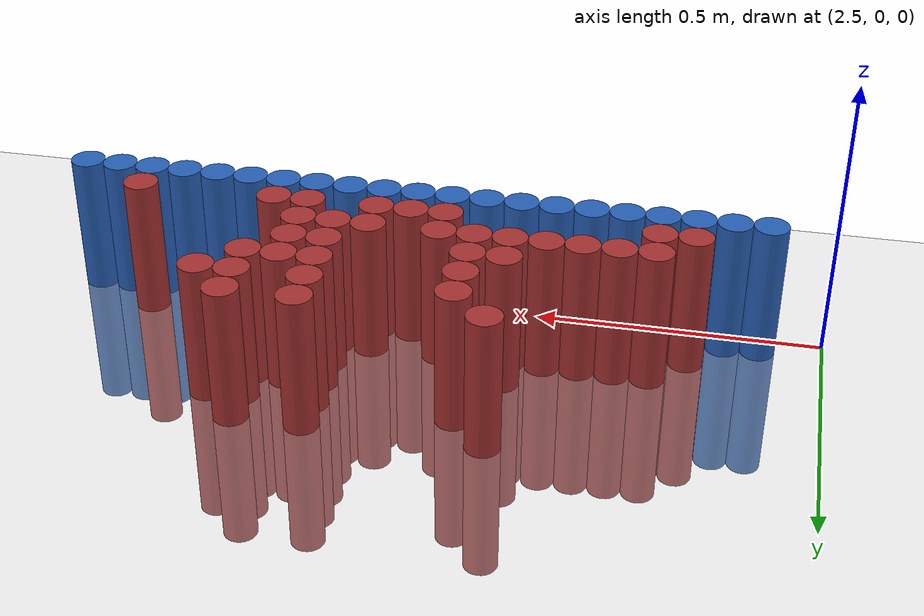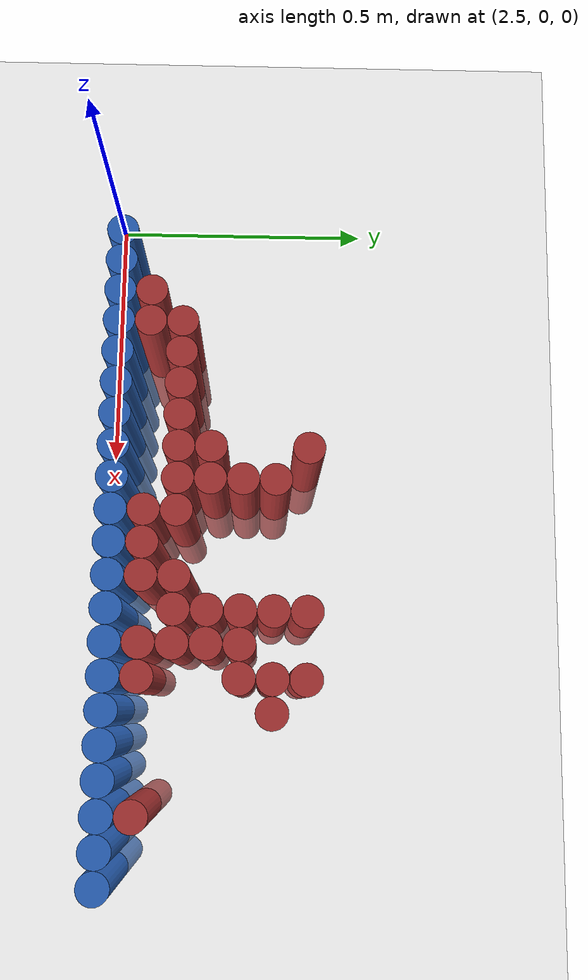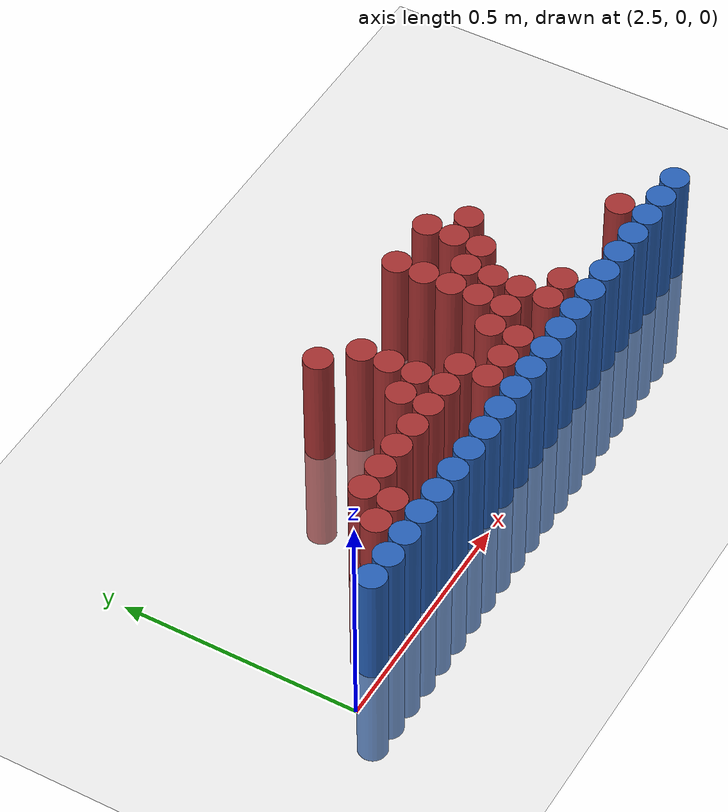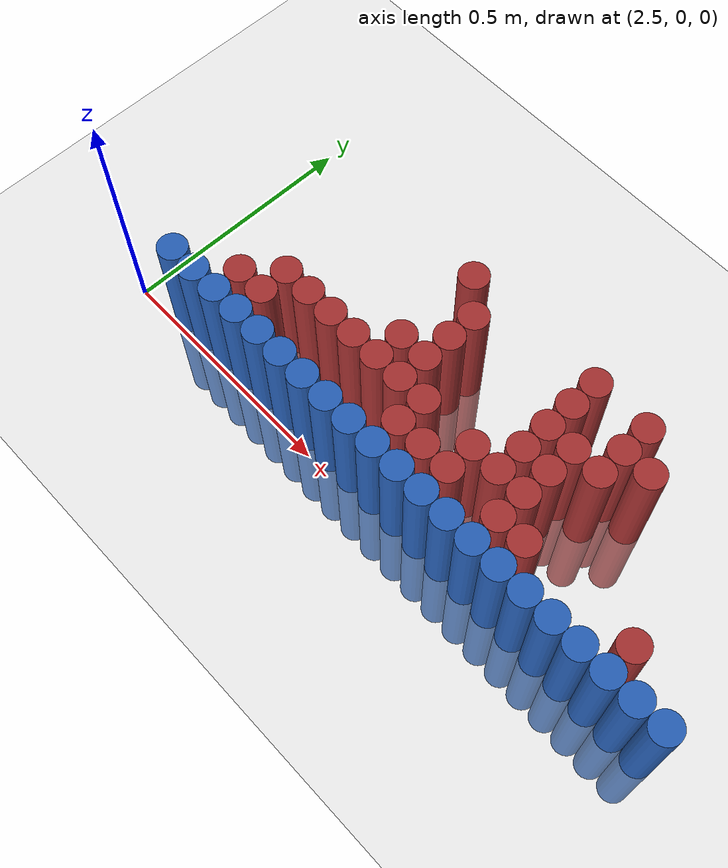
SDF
<sdf version="1.6">
 <world name="default">
  <model name="ground_plane">
   <static>1</static>
   <link name="link">
    <collision name="collision">
     <geometry><plane><normal>0 0 1</normal><size>100 100</size></plane></geometry>
     <surface><friction><ode><mu>100</mu><mu2>50</mu2></ode></friction></surface>
    </collision>
    <visual name="visual">
     <cast_shadows>0</cast_shadows>
     <geometry><plane><normal>0 0 1</normal><size>100 100</size></plane></geometry>
     <material>
      <script><uri>file://media/materials/scripts/gazebo.material</uri><name>Gazebo/Grey</name></script>
     </material>
    </visual>
   </link>
  </model>
  <model name="unit_cylinder_254">
   <static>1</static>
   <pose>3.030000 0.390000 0.000000 0.000000 0.000000 0.000000</pose>
   <link name="link">
    <inertial>
     <mass>1</mass>
     <inertia><ixx>0.145833</ixx><ixy>0</ixy><ixz>0</ixz><iyy>0.145833</iyy><iyz>0</iyz><izz>0.125</izz></inertia>
    </inertial>
    <collision name="collision">
     <geometry><cylinder><radius>0.030000</radius><length>0.5</length></cylinder></geometry>
    </collision>
    <visual name="visual">
     <geometry><cylinder><radius>0.030000</radius><length>0.5</length></cylinder></geometry>
     <material>
      <ambient>0.648000 0.192000 0.192000 1</ambient>
      <diffuse>0.648000 0.192000 0.192000 1</diffuse>
     </material>
     <material>
      <script><name>Gazebo/Grey</name><uri>file://media/materials/scripts/gazebo.material</uri></script>
     </material>
    </visual>
   </link>
  </model>
  <model name="unit_cylinder_255">
   <static>1</static>
   <pose>3.330000 0.390000 0.000000 0.000000 0.000000 0.000000</pose>
   <link name="link">
    <inertial>
     <mass>1</mass>
     <inertia><ixx>0.145833</ixx><ixy>0</ixy><ixz>0</ixz><iyy>0.145833</iyy><iyz>0</iyz><izz>0.125</izz></inertia>
    </inertial>
    <collision name="collision">
     <geometry><cylinder><radius>0.030000</radius><length>0.5</length></cylinder></geometry>
    </collision>
    <visual name="visual">
     <geometry><cylinder><radius>0.030000</radius><length>0.5</length></cylinder></geometry>
     <material>
      <ambient>0.648000 0.192000 0.192000 1</ambient>
      <diffuse>0.648000 0.192000 0.192000 1</diffuse>
     </material>
     <material>
      <script><name>Gazebo/Grey</name><uri>file://media/materials/scripts/gazebo.material</uri></script>
     </material>
    </visual>
   </link>
  </model>
  <model name="unit_cylinder_256">
   <static>1</static>
   <pose>3.450000 0.390000 0.000000 0.000000 0.000000 0.000000</pose>
   <link name="link">
    <inertial>
     <mass>1</mass>
     <inertia><ixx>0.145833</ixx><ixy>0</ixy><ixz>0</ixz><iyy>0.145833</iyy><iyz>0</iyz><izz>0.125</izz></inertia>
    </inertial>
    <collision name="collision">
     <geometry><cylinder><radius>0.030000</radius><length>0.5</length></cylinder></geometry>
    </collision>
    <visual name="visual">
     <geometry><cylinder><radius>0.030000</radius><length>0.5</length></cylinder></geometry>
     <material>
      <ambient>0.648000 0.192000 0.192000 1</ambient>
      <diffuse>0.648000 0.192000 0.192000 1</diffuse>
     </material>
     <material>
      <script><name>Gazebo/Grey</name><uri>file://media/materials/scripts/gazebo.material</uri></script>
     </material>
    </visual>
   </link>
  </model>
  <model name="unit_cylinder_258">
   <static>1</static>
   <pose>3.090000 0.330000 0.000000 0.000000 0.000000 0.000000</pose>
   <link name="link">
    <inertial>
     <mass>1</mass>
     <inertia><ixx>0.145833</ixx><ixy>0</ixy><ixz>0</ixz><iyy>0.145833</iyy><iyz>0</iyz><izz>0.125</izz></inertia>
    </inertial>
    <collision name="collision">
     <geometry><cylinder><radius>0.030000</radius><length>0.5</length></cylinder></geometry>
    </collision>
    <visual name="visual">
     <geometry><cylinder><radius>0.030000</radius><length>0.5</length></cylinder></geometry>
     <material>
      <ambient>0.648000 0.192000 0.192000 1</ambient>
      <diffuse>0.648000 0.192000 0.192000 1</diffuse>
     </material>
     <material>
      <script><name>Gazebo/Grey</name><uri>file://media/materials/scripts/gazebo.material</uri></script>
     </material>
    </visual>
   </link>
  </model>
  <model name="unit_cylinder_259">
   <static>1</static>
   <pose>3.330000 0.330000 0.000000 0.000000 0.000000 0.000000</pose>
   <link name="link">
    <inertial>
     <mass>1</mass>
     <inertia><ixx>0.145833</ixx><ixy>0</ixy><ixz>0</ixz><iyy>0.145833</iyy><iyz>0</iyz><izz>0.125</izz></inertia>
    </inertial>
    <collision name="collision">
     <geometry><cylinder><radius>0.030000</radius><length>0.5</length></cylinder></geometry>
    </collision>
    <visual name="visual">
     <geometry><cylinder><radius>0.030000</radius><length>0.5</length></cylinder></geometry>
     <material>
      <ambient>0.648000 0.192000 0.192000 1</ambient>
      <diffuse>0.648000 0.192000 0.192000 1</diffuse>
     </material>
     <material>
      <script><name>Gazebo/Grey</name><uri>file://media/materials/scripts/gazebo.material</uri></script>
     </material>
    </visual>
   </link>
  </model>
  <model name="unit_cylinder_260">
   <static>1</static>
   <pose>3.450000 0.330000 0.000000 0.000000 0.000000 0.000000</pose>
   <link name="link">
    <inertial>
     <mass>1</mass>
     <inertia><ixx>0.145833</ixx><ixy>0</ixy><ixz>0</ixz><iyy>0.145833</iyy><iyz>0</iyz><izz>0.125</izz></inertia>
    </inertial>
    <collision name="collision">
     <geometry><cylinder><radius>0.030000</radius><length>0.5</length></cylinder></geometry>
    </collision>
    <visual name="visual">
     <geometry><cylinder><radius>0.030000</radius><length>0.5</length></cylinder></geometry>
     <material>
      <ambient>0.648000 0.192000 0.192000 1</ambient>
      <diffuse>0.648000 0.192000 0.192000 1</diffuse>
     </material>
     <material>
      <script><name>Gazebo/Grey</name><uri>file://media/materials/scripts/gazebo.material</uri></script>
     </material>
    </visual>
   </link>
  </model>
  <model name="unit_cylinder_261">
   <static>1</static>
   <pose>3.510000 0.330000 0.000000 0.000000 0.000000 0.000000</pose>
   <link name="link">
    <inertial>
     <mass>1</mass>
     <inertia><ixx>0.145833</ixx><ixy>0</ixy><ixz>0</ixz><iyy>0.145833</iyy><iyz>0</iyz><izz>0.125</izz></inertia>
    </inertial>
    <collision name="collision">
     <geometry><cylinder><radius>0.030000</radius><length>0.5</length></cylinder></geometry>
    </collision>
    <visual name="visual">
     <geometry><cylinder><radius>0.030000</radius><length>0.5</length></cylinder></geometry>
     <material>
      <ambient>0.648000 0.192000 0.192000 1</ambient>
      <diffuse>0.648000 0.192000 0.192000 1</diffuse>
     </material>
     <material>
      <script><name>Gazebo/Grey</name><uri>file://media/materials/scripts/gazebo.material</uri></script>
     </material>
    </visual>
   </link>
  </model>
  <model name="unit_cylinder_262">
   <static>1</static>
   <pose>3.090000 0.270000 0.000000 0.000000 0.000000 0.000000</pose>
   <link name="link">
    <inertial>
     <mass>1</mass>
     <inertia><ixx>0.145833</ixx><ixy>0</ixy><ixz>0</ixz><iyy>0.145833</iyy><iyz>0</iyz><izz>0.125</izz></inertia>
    </inertial>
    <collision name="collision">
     <geometry><cylinder><radius>0.030000</radius><length>0.5</length></cylinder></geometry>
    </collision>
    <visual name="visual">
     <geometry><cylinder><radius>0.030000</radius><length>0.5</length></cylinder></geometry>
     <material>
      <ambient>0.648000 0.192000 0.192000 1</ambient>
      <diffuse>0.648000 0.192000 0.192000 1</diffuse>
     </material>
     <material>
      <script><name>Gazebo/Grey</name><uri>file://media/materials/scripts/gazebo.material</uri></script>
     </material>
    </visual>
   </link>
  </model>
  <model name="unit_cylinder_263">
   <static>1</static>
   <pose>3.330000 0.270000 0.000000 0.000000 0.000000 0.000000</pose>
   <link name="link">
    <inertial>
     <mass>1</mass>
     <inertia><ixx>0.145833</ixx><ixy>0</ixy><ixz>0</ixz><iyy>0.145833</iyy><iyz>0</iyz><izz>0.125</izz></inertia>
    </inertial>
    <collision name="collision">
     <geometry><cylinder><radius>0.030000</radius><length>0.5</length></cylinder></geometry>
    </collision>
    <visual name="visual">
     <geometry><cylinder><radius>0.030000</radius><length>0.5</length></cylinder></geometry>
     <material>
      <ambient>0.648000 0.192000 0.192000 1</ambient>
      <diffuse>0.648000 0.192000 0.192000 1</diffuse>
     </material>
     <material>
      <script><name>Gazebo/Grey</name><uri>file://media/materials/scripts/gazebo.material</uri></script>
     </material>
    </visual>
   </link>
  </model>
  <model name="unit_cylinder_264">
   <static>1</static>
   <pose>3.390000 0.270000 0.000000 0.000000 0.000000 0.000000</pose>
   <link name="link">
    <inertial>
     <mass>1</mass>
     <inertia><ixx>0.145833</ixx><ixy>0</ixy><ixz>0</ixz><iyy>0.145833</iyy><iyz>0</iyz><izz>0.125</izz></inertia>
    </inertial>
    <collision name="collision">
     <geometry><cylinder><radius>0.030000</radius><length>0.5</length></cylinder></geometry>
    </collision>
    <visual name="visual">
     <geometry><cylinder><radius>0.030000</radius><length>0.5</length></cylinder></geometry>
     <material>
      <ambient>0.648000 0.192000 0.192000 1</ambient>
      <diffuse>0.648000 0.192000 0.192000 1</diffuse>
     </material>
     <material>
      <script><name>Gazebo/Grey</name><uri>file://media/materials/scripts/gazebo.material</uri></script>
     </material>
    </visual>
   </link>
  </model>
  <model name="unit_cylinder_265">
   <static>1</static>
   <pose>3.450000 0.270000 0.000000 0.000000 0.000000 0.000000</pose>
   <link name="link">
    <inertial>
     <mass>1</mass>
     <inertia><ixx>0.145833</ixx><ixy>0</ixy><ixz>0</ixz><iyy>0.145833</iyy><iyz>0</iyz><izz>0.125</izz></inertia>
    </inertial>
    <collision name="collision">
     <geometry><cylinder><radius>0.030000</radius><length>0.5</length></cylinder></geometry>
    </collision>
    <visual name="visual">
     <geometry><cylinder><radius>0.030000</radius><length>0.5</length></cylinder></geometry>
     <material>
      <ambient>0.648000 0.192000 0.192000 1</ambient>
      <diffuse>0.648000 0.192000 0.192000 1</diffuse>
     </material>
     <material>
      <script><name>Gazebo/Grey</name><uri>file://media/materials/scripts/gazebo.material</uri></script>
     </material>
    </visual>
   </link>
  </model>
  <model name="unit_cylinder_266">
   <static>1</static>
   <pose>3.030000 0.210000 0.000000 0.000000 0.000000 0.000000</pose>
   <link name="link">
    <inertial>
     <mass>1</mass>
     <inertia><ixx>0.145833</ixx><ixy>0</ixy><ixz>0</ixz><iyy>0.145833</iyy><iyz>0</iyz><izz>0.125</izz></inertia>
    </inertial>
    <collision name="collision">
     <geometry><cylinder><radius>0.030000</radius><length>0.5</length></cylinder></geometry>
    </collision>
    <visual name="visual">
     <geometry><cylinder><radius>0.030000</radius><length>0.5</length></cylinder></geometry>
     <material>
      <ambient>0.648000 0.192000 0.192000 1</ambient>
      <diffuse>0.648000 0.192000 0.192000 1</diffuse>
     </material>
     <material>
      <script><name>Gazebo/Grey</name><uri>file://media/materials/scripts/gazebo.material</uri></script>
     </material>
    </visual>
   </link>
  </model>
  <model name="unit_cylinder_267">
   <static>1</static>
   <pose>3.090000 0.210000 0.000000 0.000000 0.000000 0.000000</pose>
   <link name="link">
    <inertial>
     <mass>1</mass>
     <inertia><ixx>0.145833</ixx><ixy>0</ixy><ixz>0</ixz><iyy>0.145833</iyy><iyz>0</iyz><izz>0.125</izz></inertia>
    </inertial>
    <collision name="collision">
     <geometry><cylinder><radius>0.030000</radius><length>0.5</length></cylinder></geometry>
    </collision>
    <visual name="visual">
     <geometry><cylinder><radius>0.030000</radius><length>0.5</length></cylinder></geometry>
     <material>
      <ambient>0.648000 0.192000 0.192000 1</ambient>
      <diffuse>0.648000 0.192000 0.192000 1</diffuse>
     </material>
     <material>
      <script><name>Gazebo/Grey</name><uri>file://media/materials/scripts/gazebo.material</uri></script>
     </material>
    </visual>
   </link>
  </model>
  <model name="unit_cylinder_268">
   <static>1</static>
   <pose>3.330000 0.210000 0.000000 0.000000 0.000000 0.000000</pose>
   <link name="link">
    <inertial>
     <mass>1</mass>
     <inertia><ixx>0.145833</ixx><ixy>0</ixy><ixz>0</ixz><iyy>0.145833</iyy><iyz>0</iyz><izz>0.125</izz></inertia>
    </inertial>
    <collision name="collision">
     <geometry><cylinder><radius>0.030000</radius><length>0.5</length></cylinder></geometry>
    </collision>
    <visual name="visual">
     <geometry><cylinder><radius>0.030000</radius><length>0.5</length></cylinder></geometry>
     <material>
      <ambient>0.648000 0.192000 0.192000 1</ambient>
      <diffuse>0.648000 0.192000 0.192000 1</diffuse>
     </material>
     <material>
      <script><name>Gazebo/Grey</name><uri>file://media/materials/scripts/gazebo.material</uri></script>
     </material>
    </visual>
   </link>
  </model>
  <model name="unit_cylinder_269">
   <static>1</static>
   <pose>3.390000 0.210000 0.000000 0.000000 0.000000 0.000000</pose>
   <link name="link">
    <inertial>
     <mass>1</mass>
     <inertia><ixx>0.145833</ixx><ixy>0</ixy><ixz>0</ixz><iyy>0.145833</iyy><iyz>0</iyz><izz>0.125</izz></inertia>
    </inertial>
    <collision name="collision">
     <geometry><cylinder><radius>0.030000</radius><length>0.5</length></cylinder></geometry>
    </collision>
    <visual name="visual">
     <geometry><cylinder><radius>0.030000</radius><length>0.5</length></cylinder></geometry>
     <material>
      <ambient>0.648000 0.192000 0.192000 1</ambient>
      <diffuse>0.648000 0.192000 0.192000 1</diffuse>
     </material>
     <material>
      <script><name>Gazebo/Grey</name><uri>file://media/materials/scripts/gazebo.material</uri></script>
     </material>
    </visual>
   </link>
  </model>
  <model name="unit_cylinder_272">
   <static>1</static>
   <pose>2.790000 0.150000 0.000000 0.000000 0.000000 0.000000</pose>
   <link name="link">
    <inertial>
     <mass>1</mass>
     <inertia><ixx>0.145833</ixx><ixy>0</ixy><ixz>0</ixz><iyy>0.145833</iyy><iyz>0</iyz><izz>0.125</izz></inertia>
    </inertial>
    <collision name="collision">
     <geometry><cylinder><radius>0.030000</radius><length>0.5</length></cylinder></geometry>
    </collision>
    <visual name="visual">
     <geometry><cylinder><radius>0.030000</radius><length>0.5</length></cylinder></geometry>
     <material>
      <ambient>0.648000 0.192000 0.192000 1</ambient>
      <diffuse>0.648000 0.192000 0.192000 1</diffuse>
     </material>
     <material>
      <script><name>Gazebo/Grey</name><uri>file://media/materials/scripts/gazebo.material</uri></script>
     </material>
    </visual>
   </link>
  </model>
  <model name="unit_cylinder_273">
   <static>1</static>
   <pose>2.850000 0.150000 0.000000 0.000000 0.000000 0.000000</pose>
   <link name="link">
    <inertial>
     <mass>1</mass>
     <inertia><ixx>0.145833</ixx><ixy>0</ixy><ixz>0</ixz><iyy>0.145833</iyy><iyz>0</iyz><izz>0.125</izz></inertia>
    </inertial>
    <collision name="collision">
     <geometry><cylinder><radius>0.030000</radius><length>0.5</length></cylinder></geometry>
    </collision>
    <visual name="visual">
     <geometry><cylinder><radius>0.030000</radius><length>0.5</length></cylinder></geometry>
     <material>
      <ambient>0.648000 0.192000 0.192000 1</ambient>
      <diffuse>0.648000 0.192000 0.192000 1</diffuse>
     </material>
     <material>
      <script><name>Gazebo/Grey</name><uri>file://media/materials/scripts/gazebo.material</uri></script>
     </material>
    </visual>
   </link>
  </model>
  <model name="unit_cylinder_274">
   <static>1</static>
   <pose>2.910000 0.150000 0.000000 0.000000 0.000000 0.000000</pose>
   <link name="link">
    <inertial>
     <mass>1</mass>
     <inertia><ixx>0.145833</ixx><ixy>0</ixy><ixz>0</ixz><iyy>0.145833</iyy><iyz>0</iyz><izz>0.125</izz></inertia>
    </inertial>
    <collision name="collision">
     <geometry><cylinder><radius>0.030000</radius><length>0.5</length></cylinder></geometry>
    </collision>
    <visual name="visual">
     <geometry><cylinder><radius>0.030000</radius><length>0.5</length></cylinder></geometry>
     <material>
      <ambient>0.648000 0.192000 0.192000 1</ambient>
      <diffuse>0.648000 0.192000 0.192000 1</diffuse>
     </material>
     <material>
      <script><name>Gazebo/Grey</name><uri>file://media/materials/scripts/gazebo.material</uri></script>
     </material>
    </visual>
   </link>
  </model>
  <model name="unit_cylinder_275">
   <static>1</static>
   <pose>2.970000 0.150000 0.000000 0.000000 0.000000 0.000000</pose>
   <link name="link">
    <inertial>
     <mass>1</mass>
     <inertia><ixx>0.145833</ixx><ixy>0</ixy><ixz>0</ixz><iyy>0.145833</iyy><iyz>0</iyz><izz>0.125</izz></inertia>
    </inertial>
    <collision name="collision">
     <geometry><cylinder><radius>0.030000</radius><length>0.5</length></cylinder></geometry>
    </collision>
    <visual name="visual">
     <geometry><cylinder><radius>0.030000</radius><length>0.5</length></cylinder></geometry>
     <material>
      <ambient>0.648000 0.192000 0.192000 1</ambient>
      <diffuse>0.648000 0.192000 0.192000 1</diffuse>
     </material>
     <material>
      <script><name>Gazebo/Grey</name><uri>file://media/materials/scripts/gazebo.material</uri></script>
     </material>
    </visual>
   </link>
  </model>
  <model name="unit_cylinder_276">
   <static>1</static>
   <pose>3.030000 0.150000 0.000000 0.000000 0.000000 0.000000</pose>
   <link name="link">
    <inertial>
     <mass>1</mass>
     <inertia><ixx>0.145833</ixx><ixy>0</ixy><ixz>0</ixz><iyy>0.145833</iyy><iyz>0</iyz><izz>0.125</izz></inertia>
    </inertial>
    <collision name="collision">
     <geometry><cylinder><radius>0.030000</radius><length>0.5</length></cylinder></geometry>
    </collision>
    <visual name="visual">
     <geometry><cylinder><radius>0.030000</radius><length>0.5</length></cylinder></geometry>
     <material>
      <ambient>0.648000 0.192000 0.192000 1</ambient>
      <diffuse>0.648000 0.192000 0.192000 1</diffuse>
     </material>
     <material>
      <script><name>Gazebo/Grey</name><uri>file://media/materials/scripts/gazebo.material</uri></script>
     </material>
    </visual>
   </link>
  </model>
  <model name="unit_cylinder_277">
   <static>1</static>
   <pose>3.090000 0.150000 0.000000 0.000000 0.000000 0.000000</pose>
   <link name="link">
    <inertial>
     <mass>1</mass>
     <inertia><ixx>0.145833</ixx><ixy>0</ixy><ixz>0</ixz><iyy>0.145833</iyy><iyz>0</iyz><izz>0.125</izz></inertia>
    </inertial>
    <collision name="collision">
     <geometry><cylinder><radius>0.030000</radius><length>0.5</length></cylinder></geometry>
    </collision>
    <visual name="visual">
     <geometry><cylinder><radius>0.030000</radius><length>0.5</length></cylinder></geometry>
     <material>
      <ambient>0.648000 0.192000 0.192000 1</ambient>
      <diffuse>0.648000 0.192000 0.192000 1</diffuse>
     </material>
     <material>
      <script><name>Gazebo/Grey</name><uri>file://media/materials/scripts/gazebo.material</uri></script>
     </material>
    </visual>
   </link>
  </model>
  <model name="unit_cylinder_278">
   <static>1</static>
   <pose>3.150000 0.150000 0.000000 0.000000 0.000000 0.000000</pose>
   <link name="link">
    <inertial>
     <mass>1</mass>
     <inertia><ixx>0.145833</ixx><ixy>0</ixy><ixz>0</ixz><iyy>0.145833</iyy><iyz>0</iyz><izz>0.125</izz></inertia>
    </inertial>
    <collision name="collision">
     <geometry><cylinder><radius>0.030000</radius><length>0.5</length></cylinder></geometry>
    </collision>
    <visual name="visual">
     <geometry><cylinder><radius>0.030000</radius><length>0.5</length></cylinder></geometry>
     <material>
      <ambient>0.648000 0.192000 0.192000 1</ambient>
      <diffuse>0.648000 0.192000 0.192000 1</diffuse>
     </material>
     <material>
      <script><name>Gazebo/Grey</name><uri>file://media/materials/scripts/gazebo.material</uri></script>
     </material>
    </visual>
   </link>
  </model>
  <model name="unit_cylinder_279">
   <static>1</static>
   <pose>3.270000 0.150000 0.000000 0.000000 0.000000 0.000000</pose>
   <link name="link">
    <inertial>
     <mass>1</mass>
     <inertia><ixx>0.145833</ixx><ixy>0</ixy><ixz>0</ixz><iyy>0.145833</iyy><iyz>0</iyz><izz>0.125</izz></inertia>
    </inertial>
    <collision name="collision">
     <geometry><cylinder><radius>0.030000</radius><length>0.5</length></cylinder></geometry>
    </collision>
    <visual name="visual">
     <geometry><cylinder><radius>0.030000</radius><length>0.5</length></cylinder></geometry>
     <material>
      <ambient>0.648000 0.192000 0.192000 1</ambient>
      <diffuse>0.648000 0.192000 0.192000 1</diffuse>
     </material>
     <material>
      <script><name>Gazebo/Grey</name><uri>file://media/materials/scripts/gazebo.material</uri></script>
     </material>
    </visual>
   </link>
  </model>
  <model name="unit_cylinder_280">
   <static>1</static>
   <pose>3.330000 0.150000 0.000000 0.000000 0.000000 0.000000</pose>
   <link name="link">
    <inertial>
     <mass>1</mass>
     <inertia><ixx>0.145833</ixx><ixy>0</ixy><ixz>0</ixz><iyy>0.145833</iyy><iyz>0</iyz><izz>0.125</izz></inertia>
    </inertial>
    <collision name="collision">
     <geometry><cylinder><radius>0.030000</radius><length>0.5</length></cylinder></geometry>
    </collision>
    <visual name="visual">
     <geometry><cylinder><radius>0.030000</radius><length>0.5</length></cylinder></geometry>
     <material>
      <ambient>0.648000 0.192000 0.192000 1</ambient>
      <diffuse>0.648000 0.192000 0.192000 1</diffuse>
     </material>
     <material>
      <script><name>Gazebo/Grey</name><uri>file://media/materials/scripts/gazebo.material</uri></script>
     </material>
    </visual>
   </link>
  </model>
  <model name="unit_cylinder_281">
   <static>1</static>
   <pose>3.390000 0.150000 0.000000 0.000000 0.000000 0.000000</pose>
   <link name="link">
    <inertial>
     <mass>1</mass>
     <inertia><ixx>0.145833</ixx><ixy>0</ixy><ixz>0</ixz><iyy>0.145833</iyy><iyz>0</iyz><izz>0.125</izz></inertia>
    </inertial>
    <collision name="collision">
     <geometry><cylinder><radius>0.030000</radius><length>0.5</length></cylinder></geometry>
    </collision>
    <visual name="visual">
     <geometry><cylinder><radius>0.030000</radius><length>0.5</length></cylinder></geometry>
     <material>
      <ambient>0.648000 0.192000 0.192000 1</ambient>
      <diffuse>0.648000 0.192000 0.192000 1</diffuse>
     </material>
     <material>
      <script><name>Gazebo/Grey</name><uri>file://media/materials/scripts/gazebo.material</uri></script>
     </material>
    </visual>
   </link>
  </model>
  <model name="unit_cylinder_289">
   <static>1</static>
   <pose>2.730000 0.090000 0.000000 0.000000 0.000000 0.000000</pose>
   <link name="link">
    <inertial>
     <mass>1</mass>
     <inertia><ixx>0.145833</ixx><ixy>0</ixy><ixz>0</ixz><iyy>0.145833</iyy><iyz>0</iyz><izz>0.125</izz></inertia>
    </inertial>
    <collision name="collision">
     <geometry><cylinder><radius>0.030000</radius><length>0.5</length></cylinder></geometry>
    </collision>
    <visual name="visual">
     <geometry><cylinder><radius>0.030000</radius><length>0.5</length></cylinder></geometry>
     <material>
      <ambient>0.648000 0.192000 0.192000 1</ambient>
      <diffuse>0.648000 0.192000 0.192000 1</diffuse>
     </material>
     <material>
      <script><name>Gazebo/Grey</name><uri>file://media/materials/scripts/gazebo.material</uri></script>
     </material>
    </visual>
   </link>
  </model>
  <model name="unit_cylinder_290">
   <static>1</static>
   <pose>2.790000 0.090000 0.000000 0.000000 0.000000 0.000000</pose>
   <link name="link">
    <inertial>
     <mass>1</mass>
     <inertia><ixx>0.145833</ixx><ixy>0</ixy><ixz>0</ixz><iyy>0.145833</iyy><iyz>0</iyz><izz>0.125</izz></inertia>
    </inertial>
    <collision name="collision">
     <geometry><cylinder><radius>0.030000</radius><length>0.5</length></cylinder></geometry>
    </collision>
    <visual name="visual">
     <geometry><cylinder><radius>0.030000</radius><length>0.5</length></cylinder></geometry>
     <material>
      <ambient>0.648000 0.192000 0.192000 1</ambient>
      <diffuse>0.648000 0.192000 0.192000 1</diffuse>
     </material>
     <material>
      <script><name>Gazebo/Grey</name><uri>file://media/materials/scripts/gazebo.material</uri></script>
     </material>
    </visual>
   </link>
  </model>
  <model name="unit_cylinder_291">
   <static>1</static>
   <pose>3.150000 0.090000 0.000000 0.000000 0.000000 0.000000</pose>
   <link name="link">
    <inertial>
     <mass>1</mass>
     <inertia><ixx>0.145833</ixx><ixy>0</ixy><ixz>0</ixz><iyy>0.145833</iyy><iyz>0</iyz><izz>0.125</izz></inertia>
    </inertial>
    <collision name="collision">
     <geometry><cylinder><radius>0.030000</radius><length>0.5</length></cylinder></geometry>
    </collision>
    <visual name="visual">
     <geometry><cylinder><radius>0.030000</radius><length>0.5</length></cylinder></geometry>
     <material>
      <ambient>0.648000 0.192000 0.192000 1</ambient>
      <diffuse>0.648000 0.192000 0.192000 1</diffuse>
     </material>
     <material>
      <script><name>Gazebo/Grey</name><uri>file://media/materials/scripts/gazebo.material</uri></script>
     </material>
    </visual>
   </link>
  </model>
  <model name="unit_cylinder_292">
   <static>1</static>
   <pose>3.210000 0.090000 0.000000 0.000000 0.000000 0.000000</pose>
   <link name="link">
    <inertial>
     <mass>1</mass>
     <inertia><ixx>0.145833</ixx><ixy>0</ixy><ixz>0</ixz><iyy>0.145833</iyy><iyz>0</iyz><izz>0.125</izz></inertia>
    </inertial>
    <collision name="collision">
     <geometry><cylinder><radius>0.030000</radius><length>0.5</length></cylinder></geometry>
    </collision>
    <visual name="visual">
     <geometry><cylinder><radius>0.030000</radius><length>0.5</length></cylinder></geometry>
     <material>
      <ambient>0.648000 0.192000 0.192000 1</ambient>
      <diffuse>0.648000 0.192000 0.192000 1</diffuse>
     </material>
     <material>
      <script><name>Gazebo/Grey</name><uri>file://media/materials/scripts/gazebo.material</uri></script>
     </material>
    </visual>
   </link>
  </model>
  <model name="unit_cylinder_293">
   <static>1</static>
   <pose>3.270000 0.090000 0.000000 0.000000 0.000000 0.000000</pose>
   <link name="link">
    <inertial>
     <mass>1</mass>
     <inertia><ixx>0.145833</ixx><ixy>0</ixy><ixz>0</ixz><iyy>0.145833</iyy><iyz>0</iyz><izz>0.125</izz></inertia>
    </inertial>
    <collision name="collision">
     <geometry><cylinder><radius>0.030000</radius><length>0.5</length></cylinder></geometry>
    </collision>
    <visual name="visual">
     <geometry><cylinder><radius>0.030000</radius><length>0.5</length></cylinder></geometry>
     <material>
      <ambient>0.648000 0.192000 0.192000 1</ambient>
      <diffuse>0.648000 0.192000 0.192000 1</diffuse>
     </material>
     <material>
      <script><name>Gazebo/Grey</name><uri>file://media/materials/scripts/gazebo.material</uri></script>
     </material>
    </visual>
   </link>
  </model>
  <model name="unit_cylinder_294">
   <static>1</static>
   <pose>3.390000 0.090000 0.000000 0.000000 0.000000 0.000000</pose>
   <link name="link">
    <inertial>
     <mass>1</mass>
     <inertia><ixx>0.145833</ixx><ixy>0</ixy><ixz>0</ixz><iyy>0.145833</iyy><iyz>0</iyz><izz>0.125</izz></inertia>
    </inertial>
    <collision name="collision">
     <geometry><cylinder><radius>0.030000</radius><length>0.5</length></cylinder></geometry>
    </collision>
    <visual name="visual">
     <geometry><cylinder><radius>0.030000</radius><length>0.5</length></cylinder></geometry>
     <material>
      <ambient>0.648000 0.192000 0.192000 1</ambient>
      <diffuse>0.648000 0.192000 0.192000 1</diffuse>
     </material>
     <material>
      <script><name>Gazebo/Grey</name><uri>file://media/materials/scripts/gazebo.material</uri></script>
     </material>
    </visual>
   </link>
  </model>
  <model name="unit_cylinder_295">
   <static>1</static>
   <pose>3.450000 0.090000 0.000000 0.000000 0.000000 0.000000</pose>
   <link name="link">
    <inertial>
     <mass>1</mass>
     <inertia><ixx>0.145833</ixx><ixy>0</ixy><ixz>0</ixz><iyy>0.145833</iyy><iyz>0</iyz><izz>0.125</izz></inertia>
    </inertial>
    <collision name="collision">
     <geometry><cylinder><radius>0.030000</radius><length>0.5</length></cylinder></geometry>
    </collision>
    <visual name="visual">
     <geometry><cylinder><radius>0.030000</radius><length>0.5</length></cylinder></geometry>
     <material>
      <ambient>0.648000 0.192000 0.192000 1</ambient>
      <diffuse>0.648000 0.192000 0.192000 1</diffuse>
     </material>
     <material>
      <script><name>Gazebo/Grey</name><uri>file://media/materials/scripts/gazebo.material</uri></script>
     </material>
    </visual>
   </link>
  </model>
  <model name="unit_cylinder_296">
   <static>1</static>
   <pose>3.690000 0.090000 0.000000 0.000000 0.000000 0.000000</pose>
   <link name="link">
    <inertial>
     <mass>1</mass>
     <inertia><ixx>0.145833</ixx><ixy>0</ixy><ixz>0</ixz><iyy>0.145833</iyy><iyz>0</iyz><izz>0.125</izz></inertia>
    </inertial>
    <collision name="collision">
     <geometry><cylinder><radius>0.030000</radius><length>0.5</length></cylinder></geometry>
    </collision>
    <visual name="visual">
     <geometry><cylinder><radius>0.030000</radius><length>0.5</length></cylinder></geometry>
     <material>
      <ambient>0.648000 0.192000 0.192000 1</ambient>
      <diffuse>0.648000 0.192000 0.192000 1</diffuse>
     </material>
     <material>
      <script><name>Gazebo/Grey</name><uri>file://media/materials/scripts/gazebo.material</uri></script>
     </material>
    </visual>
   </link>
  </model>
  <model name="unit_cylinder_306">
   <static>1</static>
   <pose>2.610000 0.030000 0.000000 0.000000 0.000000 0.000000</pose>
   <link name="link">
    <inertial>
     <mass>1</mass>
     <inertia><ixx>0.145833</ixx><ixy>0</ixy><ixz>0</ixz><iyy>0.145833</iyy><iyz>0</iyz><izz>0.125</izz></inertia>
    </inertial>
    <collision name="collision">
     <geometry><cylinder><radius>0.030000</radius><length>0.5</length></cylinder></geometry>
    </collision>
    <visual name="visual">
     <geometry><cylinder><radius>0.030000</radius><length>0.5</length></cylinder></geometry>
     <material>
      <ambient>0.152000 0.379000 0.720000 1</ambient>
      <diffuse>0.152000 0.379000 0.720000 1</diffuse>
     </material>
     <material>
      <script><name>Gazebo/Grey</name><uri>file://media/materials/scripts/gazebo.material</uri></script>
     </material>
    </visual>
   </link>
  </model>
  <model name="unit_cylinder_307">
   <static>1</static>
   <pose>2.670000 0.030000 0.000000 0.000000 0.000000 0.000000</pose>
   <link name="link">
    <inertial>
     <mass>1</mass>
     <inertia><ixx>0.145833</ixx><ixy>0</ixy><ixz>0</ixz><iyy>0.145833</iyy><iyz>0</iyz><izz>0.125</izz></inertia>
    </inertial>
    <collision name="collision">
     <geometry><cylinder><radius>0.030000</radius><length>0.5</length></cylinder></geometry>
    </collision>
    <visual name="visual">
     <geometry><cylinder><radius>0.030000</radius><length>0.5</length></cylinder></geometry>
     <material>
      <ambient>0.152000 0.379000 0.720000 1</ambient>
      <diffuse>0.152000 0.379000 0.720000 1</diffuse>
     </material>
     <material>
      <script><name>Gazebo/Grey</name><uri>file://media/materials/scripts/gazebo.material</uri></script>
     </material>
    </visual>
   </link>
  </model>
  <model name="unit_cylinder_308">
   <static>1</static>
   <pose>2.730000 0.030000 0.000000 0.000000 0.000000 0.000000</pose>
   <link name="link">
    <inertial>
     <mass>1</mass>
     <inertia><ixx>0.145833</ixx><ixy>0</ixy><ixz>0</ixz><iyy>0.145833</iyy><iyz>0</iyz><izz>0.125</izz></inertia>
    </inertial>
    <collision name="collision">
     <geometry><cylinder><radius>0.030000</radius><length>0.5</length></cylinder></geometry>
    </collision>
    <visual name="visual">
     <geometry><cylinder><radius>0.030000</radius><length>0.5</length></cylinder></geometry>
     <material>
      <ambient>0.152000 0.379000 0.720000 1</ambient>
      <diffuse>0.152000 0.379000 0.720000 1</diffuse>
     </material>
     <material>
      <script><name>Gazebo/Grey</name><uri>file://media/materials/scripts/gazebo.material</uri></script>
     </material>
    </visual>
   </link>
  </model>
  <model name="unit_cylinder_309">
   <static>1</static>
   <pose>2.790000 0.030000 0.000000 0.000000 0.000000 0.000000</pose>
   <link name="link">
    <inertial>
     <mass>1</mass>
     <inertia><ixx>0.145833</ixx><ixy>0</ixy><ixz>0</ixz><iyy>0.145833</iyy><iyz>0</iyz><izz>0.125</izz></inertia>
    </inertial>
    <collision name="collision">
     <geometry><cylinder><radius>0.030000</radius><length>0.5</length></cylinder></geometry>
    </collision>
    <visual name="visual">
     <geometry><cylinder><radius>0.030000</radius><length>0.5</length></cylinder></geometry>
     <material>
      <ambient>0.152000 0.379000 0.720000 1</ambient>
      <diffuse>0.152000 0.379000 0.720000 1</diffuse>
     </material>
     <material>
      <script><name>Gazebo/Grey</name><uri>file://media/materials/scripts/gazebo.material</uri></script>
     </material>
    </visual>
   </link>
  </model>
  <model name="unit_cylinder_310">
   <static>1</static>
   <pose>2.850000 0.030000 0.000000 0.000000 0.000000 0.000000</pose>
   <link name="link">
    <inertial>
     <mass>1</mass>
     <inertia><ixx>0.145833</ixx><ixy>0</ixy><ixz>0</ixz><iyy>0.145833</iyy><iyz>0</iyz><izz>0.125</izz></inertia>
    </inertial>
    <collision name="collision">
     <geometry><cylinder><radius>0.030000</radius><length>0.5</length></cylinder></geometry>
    </collision>
    <visual name="visual">
     <geometry><cylinder><radius>0.030000</radius><length>0.5</length></cylinder></geometry>
     <material>
      <ambient>0.152000 0.379000 0.720000 1</ambient>
      <diffuse>0.152000 0.379000 0.720000 1</diffuse>
     </material>
     <material>
      <script><name>Gazebo/Grey</name><uri>file://media/materials/scripts/gazebo.material</uri></script>
     </material>
    </visual>
   </link>
  </model>
  <model name="unit_cylinder_311">
   <static>1</static>
   <pose>2.910000 0.030000 0.000000 0.000000 0.000000 0.000000</pose>
   <link name="link">
    <inertial>
     <mass>1</mass>
     <inertia><ixx>0.145833</ixx><ixy>0</ixy><ixz>0</ixz><iyy>0.145833</iyy><iyz>0</iyz><izz>0.125</izz></inertia>
    </inertial>
    <collision name="collision">
     <geometry><cylinder><radius>0.030000</radius><length>0.5</length></cylinder></geometry>
    </collision>
    <visual name="visual">
     <geometry><cylinder><radius>0.030000</radius><length>0.5</length></cylinder></geometry>
     <material>
      <ambient>0.152000 0.379000 0.720000 1</ambient>
      <diffuse>0.152000 0.379000 0.720000 1</diffuse>
     </material>
     <material>
      <script><name>Gazebo/Grey</name><uri>file://media/materials/scripts/gazebo.material</uri></script>
     </material>
    </visual>
   </link>
  </model>
  <model name="unit_cylinder_312">
   <static>1</static>
   <pose>2.970000 0.030000 0.000000 0.000000 0.000000 0.000000</pose>
   <link name="link">
    <inertial>
     <mass>1</mass>
     <inertia><ixx>0.145833</ixx><ixy>0</ixy><ixz>0</ixz><iyy>0.145833</iyy><iyz>0</iyz><izz>0.125</izz></inertia>
    </inertial>
    <collision name="collision">
     <geometry><cylinder><radius>0.030000</radius><length>0.5</length></cylinder></geometry>
    </collision>
    <visual name="visual">
     <geometry><cylinder><radius>0.030000</radius><length>0.5</length></cylinder></geometry>
     <material>
      <ambient>0.152000 0.379000 0.720000 1</ambient>
      <diffuse>0.152000 0.379000 0.720000 1</diffuse>
     </material>
     <material>
      <script><name>Gazebo/Grey</name><uri>file://media/materials/scripts/gazebo.material</uri></script>
     </material>
    </visual>
   </link>
  </model>
  <model name="unit_cylinder_313">
   <static>1</static>
   <pose>3.030000 0.030000 0.000000 0.000000 0.000000 0.000000</pose>
   <link name="link">
    <inertial>
     <mass>1</mass>
     <inertia><ixx>0.145833</ixx><ixy>0</ixy><ixz>0</ixz><iyy>0.145833</iyy><iyz>0</iyz><izz>0.125</izz></inertia>
    </inertial>
    <collision name="collision">
     <geometry><cylinder><radius>0.030000</radius><length>0.5</length></cylinder></geometry>
    </collision>
    <visual name="visual">
     <geometry><cylinder><radius>0.030000</radius><length>0.5</length></cylinder></geometry>
     <material>
      <ambient>0.152000 0.379000 0.720000 1</ambient>
      <diffuse>0.152000 0.379000 0.720000 1</diffuse>
     </material>
     <material>
      <script><name>Gazebo/Grey</name><uri>file://media/materials/scripts/gazebo.material</uri></script>
     </material>
    </visual>
   </link>
  </model>
  <model name="unit_cylinder_314">
   <static>1</static>
   <pose>3.090000 0.030000 0.000000 0.000000 0.000000 0.000000</pose>
   <link name="link">
    <inertial>
     <mass>1</mass>
     <inertia><ixx>0.145833</ixx><ixy>0</ixy><ixz>0</ixz><iyy>0.145833</iyy><iyz>0</iyz><izz>0.125</izz></inertia>
    </inertial>
    <collision name="collision">
     <geometry><cylinder><radius>0.030000</radius><length>0.5</length></cylinder></geometry>
    </collision>
    <visual name="visual">
     <geometry><cylinder><radius>0.030000</radius><length>0.5</length></cylinder></geometry>
     <material>
      <ambient>0.152000 0.379000 0.720000 1</ambient>
      <diffuse>0.152000 0.379000 0.720000 1</diffuse>
     </material>
     <material>
      <script><name>Gazebo/Grey</name><uri>file://media/materials/scripts/gazebo.material</uri></script>
     </material>
    </visual>
   </link>
  </model>
  <model name="unit_cylinder_315">
   <static>1</static>
   <pose>3.150000 0.030000 0.000000 0.000000 0.000000 0.000000</pose>
   <link name="link">
    <inertial>
     <mass>1</mass>
     <inertia><ixx>0.145833</ixx><ixy>0</ixy><ixz>0</ixz><iyy>0.145833</iyy><iyz>0</iyz><izz>0.125</izz></inertia>
    </inertial>
    <collision name="collision">
     <geometry><cylinder><radius>0.030000</radius><length>0.5</length></cylinder></geometry>
    </collision>
    <visual name="visual">
     <geometry><cylinder><radius>0.030000</radius><length>0.5</length></cylinder></geometry>
     <material>
      <ambient>0.152000 0.379000 0.720000 1</ambient>
      <diffuse>0.152000 0.379000 0.720000 1</diffuse>
     </material>
     <material>
      <script><name>Gazebo/Grey</name><uri>file://media/materials/scripts/gazebo.material</uri></script>
     </material>
    </visual>
   </link>
  </model>
  <model name="unit_cylinder_316">
   <static>1</static>
   <pose>3.210000 0.030000 0.000000 0.000000 0.000000 0.000000</pose>
   <link name="link">
    <inertial>
     <mass>1</mass>
     <inertia><ixx>0.145833</ixx><ixy>0</ixy><ixz>0</ixz><iyy>0.145833</iyy><iyz>0</iyz><izz>0.125</izz></inertia>
    </inertial>
    <collision name="collision">
     <geometry><cylinder><radius>0.030000</radius><length>0.5</length></cylinder></geometry>
    </collision>
    <visual name="visual">
     <geometry><cylinder><radius>0.030000</radius><length>0.5</length></cylinder></geometry>
     <material>
      <ambient>0.152000 0.379000 0.720000 1</ambient>
      <diffuse>0.152000 0.379000 0.720000 1</diffuse>
     </material>
     <material>
      <script><name>Gazebo/Grey</name><uri>file://media/materials/scripts/gazebo.material</uri></script>
     </material>
    </visual>
   </link>
  </model>
  <model name="unit_cylinder_317">
   <static>1</static>
   <pose>3.270000 0.030000 0.000000 0.000000 0.000000 0.000000</pose>
   <link name="link">
    <inertial>
     <mass>1</mass>
     <inertia><ixx>0.145833</ixx><ixy>0</ixy><ixz>0</ixz><iyy>0.145833</iyy><iyz>0</iyz><izz>0.125</izz></inertia>
    </inertial>
    <collision name="collision">
     <geometry><cylinder><radius>0.030000</radius><length>0.5</length></cylinder></geometry>
    </collision>
    <visual name="visual">
     <geometry><cylinder><radius>0.030000</radius><length>0.5</length></cylinder></geometry>
     <material>
      <ambient>0.152000 0.379000 0.720000 1</ambient>
      <diffuse>0.152000 0.379000 0.720000 1</diffuse>
     </material>
     <material>
      <script><name>Gazebo/Grey</name><uri>file://media/materials/scripts/gazebo.material</uri></script>
     </material>
    </visual>
   </link>
  </model>
  <model name="unit_cylinder_318">
   <static>1</static>
   <pose>3.330000 0.030000 0.000000 0.000000 0.000000 0.000000</pose>
   <link name="link">
    <inertial>
     <mass>1</mass>
     <inertia><ixx>0.145833</ixx><ixy>0</ixy><ixz>0</ixz><iyy>0.145833</iyy><iyz>0</iyz><izz>0.125</izz></inertia>
    </inertial>
    <collision name="collision">
     <geometry><cylinder><radius>0.030000</radius><length>0.5</length></cylinder></geometry>
    </collision>
    <visual name="visual">
     <geometry><cylinder><radius>0.030000</radius><length>0.5</length></cylinder></geometry>
     <material>
      <ambient>0.152000 0.379000 0.720000 1</ambient>
      <diffuse>0.152000 0.379000 0.720000 1</diffuse>
     </material>
     <material>
      <script><name>Gazebo/Grey</name><uri>file://media/materials/scripts/gazebo.material</uri></script>
     </material>
    </visual>
   </link>
  </model>
  <model name="unit_cylinder_319">
   <static>1</static>
   <pose>3.390000 0.030000 0.000000 0.000000 0.000000 0.000000</pose>
   <link name="link">
    <inertial>
     <mass>1</mass>
     <inertia><ixx>0.145833</ixx><ixy>0</ixy><ixz>0</ixz><iyy>0.145833</iyy><iyz>0</iyz><izz>0.125</izz></inertia>
    </inertial>
    <collision name="collision">
     <geometry><cylinder><radius>0.030000</radius><length>0.5</length></cylinder></geometry>
    </collision>
    <visual name="visual">
     <geometry><cylinder><radius>0.030000</radius><length>0.5</length></cylinder></geometry>
     <material>
      <ambient>0.152000 0.379000 0.720000 1</ambient>
      <diffuse>0.152000 0.379000 0.720000 1</diffuse>
     </material>
     <material>
      <script><name>Gazebo/Grey</name><uri>file://media/materials/scripts/gazebo.material</uri></script>
     </material>
    </visual>
   </link>
  </model>
  <model name="unit_cylinder_320">
   <static>1</static>
   <pose>3.450000 0.030000 0.000000 0.000000 0.000000 0.000000</pose>
   <link name="link">
    <inertial>
     <mass>1</mass>
     <inertia><ixx>0.145833</ixx><ixy>0</ixy><ixz>0</ixz><iyy>0.145833</iyy><iyz>0</iyz><izz>0.125</izz></inertia>
    </inertial>
    <collision name="collision">
     <geometry><cylinder><radius>0.030000</radius><length>0.5</length></cylinder></geometry>
    </collision>
    <visual name="visual">
     <geometry><cylinder><radius>0.030000</radius><length>0.5</length></cylinder></geometry>
     <material>
      <ambient>0.152000 0.379000 0.720000 1</ambient>
      <diffuse>0.152000 0.379000 0.720000 1</diffuse>
     </material>
     <material>
      <script><name>Gazebo/Grey</name><uri>file://media/materials/scripts/gazebo.material</uri></script>
     </material>
    </visual>
   </link>
  </model>
  <model name="unit_cylinder_321">
   <static>1</static>
   <pose>3.510000 0.030000 0.000000 0.000000 0.000000 0.000000</pose>
   <link name="link">
    <inertial>
     <mass>1</mass>
     <inertia><ixx>0.145833</ixx><ixy>0</ixy><ixz>0</ixz><iyy>0.145833</iyy><iyz>0</iyz><izz>0.125</izz></inertia>
    </inertial>
    <collision name="collision">
     <geometry><cylinder><radius>0.030000</radius><length>0.5</length></cylinder></geometry>
    </collision>
    <visual name="visual">
     <geometry><cylinder><radius>0.030000</radius><length>0.5</length></cylinder></geometry>
     <material>
      <ambient>0.152000 0.379000 0.720000 1</ambient>
      <diffuse>0.152000 0.379000 0.720000 1</diffuse>
     </material>
     <material>
      <script><name>Gazebo/Grey</name><uri>file://media/materials/scripts/gazebo.material</uri></script>
     </material>
    </visual>
   </link>
  </model>
  <model name="unit_cylinder_322">
   <static>1</static>
   <pose>3.570000 0.030000 0.000000 0.000000 0.000000 0.000000</pose>
   <link name="link">
    <inertial>
     <mass>1</mass>
     <inertia><ixx>0.145833</ixx><ixy>0</ixy><ixz>0</ixz><iyy>0.145833</iyy><iyz>0</iyz><izz>0.125</izz></inertia>
    </inertial>
    <collision name="collision">
     <geometry><cylinder><radius>0.030000</radius><length>0.5</length></cylinder></geometry>
    </collision>
    <visual name="visual">
     <geometry><cylinder><radius>0.030000</radius><length>0.5</length></cylinder></geometry>
     <material>
      <ambient>0.152000 0.379000 0.720000 1</ambient>
      <diffuse>0.152000 0.379000 0.720000 1</diffuse>
     </material>
     <material>
      <script><name>Gazebo/Grey</name><uri>file://media/materials/scripts/gazebo.material</uri></script>
     </material>
    </visual>
   </link>
  </model>
  <model name="unit_cylinder_323">
   <static>1</static>
   <pose>3.630000 0.030000 0.000000 0.000000 0.000000 0.000000</pose>
   <link name="link">
    <inertial>
     <mass>1</mass>
     <inertia><ixx>0.145833</ixx><ixy>0</ixy><ixz>0</ixz><iyy>0.145833</iyy><iyz>0</iyz><izz>0.125</izz></inertia>
    </inertial>
    <collision name="collision">
     <geometry><cylinder><radius>0.030000</radius><length>0.5</length></cylinder></geometry>
    </collision>
    <visual name="visual">
     <geometry><cylinder><radius>0.030000</radius><length>0.5</length></cylinder></geometry>
     <material>
      <ambient>0.152000 0.379000 0.720000 1</ambient>
      <diffuse>0.152000 0.379000 0.720000 1</diffuse>
     </material>
     <material>
      <script><name>Gazebo/Grey</name><uri>file://media/materials/scripts/gazebo.material</uri></script>
     </material>
    </visual>
   </link>
  </model>
  <model name="unit_cylinder_324">
   <static>1</static>
   <pose>3.690000 0.030000 0.000000 0.000000 0.000000 0.000000</pose>
   <link name="link">
    <inertial>
     <mass>1</mass>
     <inertia><ixx>0.145833</ixx><ixy>0</ixy><ixz>0</ixz><iyy>0.145833</iyy><iyz>0</iyz><izz>0.125</izz></inertia>
    </inertial>
    <collision name="collision">
     <geometry><cylinder><radius>0.030000</radius><length>0.5</length></cylinder></geometry>
    </collision>
    <visual name="visual">
     <geometry><cylinder><radius>0.030000</radius><length>0.5</length></cylinder></geometry>
     <material>
      <ambient>0.152000 0.379000 0.720000 1</ambient>
      <diffuse>0.152000 0.379000 0.720000 1</diffuse>
     </material>
     <material>
      <script><name>Gazebo/Grey</name><uri>file://media/materials/scripts/gazebo.material</uri></script>
     </material>
    </visual>
   </link>
  </model>
  <model name="unit_cylinder_325">
   <static>1</static>
   <pose>3.750000 0.030000 0.000000 0.000000 0.000000 0.000000</pose>
   <link name="link">
    <inertial>
     <mass>1</mass>
     <inertia><ixx>0.145833</ixx><ixy>0</ixy><ixz>0</ixz><iyy>0.145833</iyy><iyz>0</iyz><izz>0.125</izz></inertia>
    </inertial>
    <collision name="collision">
     <geometry><cylinder><radius>0.030000</radius><length>0.5</length></cylinder></geometry>
    </collision>
    <visual name="visual">
     <geometry><cylinder><radius>0.030000</radius><length>0.5</length></cylinder></geometry>
     <material>
      <ambient>0.152000 0.379000 0.720000 1</ambient>
      <diffuse>0.152000 0.379000 0.720000 1</diffuse>
     </material>
     <material>
      <script><name>Gazebo/Grey</name><uri>file://media/materials/scripts/gazebo.material</uri></script>
     </material>
    </visual>
   </link>
  </model>
  <model name="unit_cylinder_326">
   <static>1</static>
   <pose>3.810000 0.030000 0.000000 0.000000 0.000000 0.000000</pose>
   <link name="link">
    <inertial>
     <mass>1</mass>
     <inertia><ixx>0.145833</ixx><ixy>0</ixy><ixz>0</ixz><iyy>0.145833</iyy><iyz>0</iyz><izz>0.125</izz></inertia>
    </inertial>
    <collision name="collision">
     <geometry><cylinder><radius>0.030000</radius><length>0.5</length></cylinder></geometry>
    </collision>
    <visual name="visual">
     <geometry><cylinder><radius>0.030000</radius><length>0.5</length></cylinder></geometry>
     <material>
      <ambient>0.152000 0.379000 0.720000 1</ambient>
      <diffuse>0.152000 0.379000 0.720000 1</diffuse>
     </material>
     <material>
      <script><name>Gazebo/Grey</name><uri>file://media/materials/scripts/gazebo.material</uri></script>
     </material>
    </visual>
   </link>
  </model>
 </world>
</sdf>
